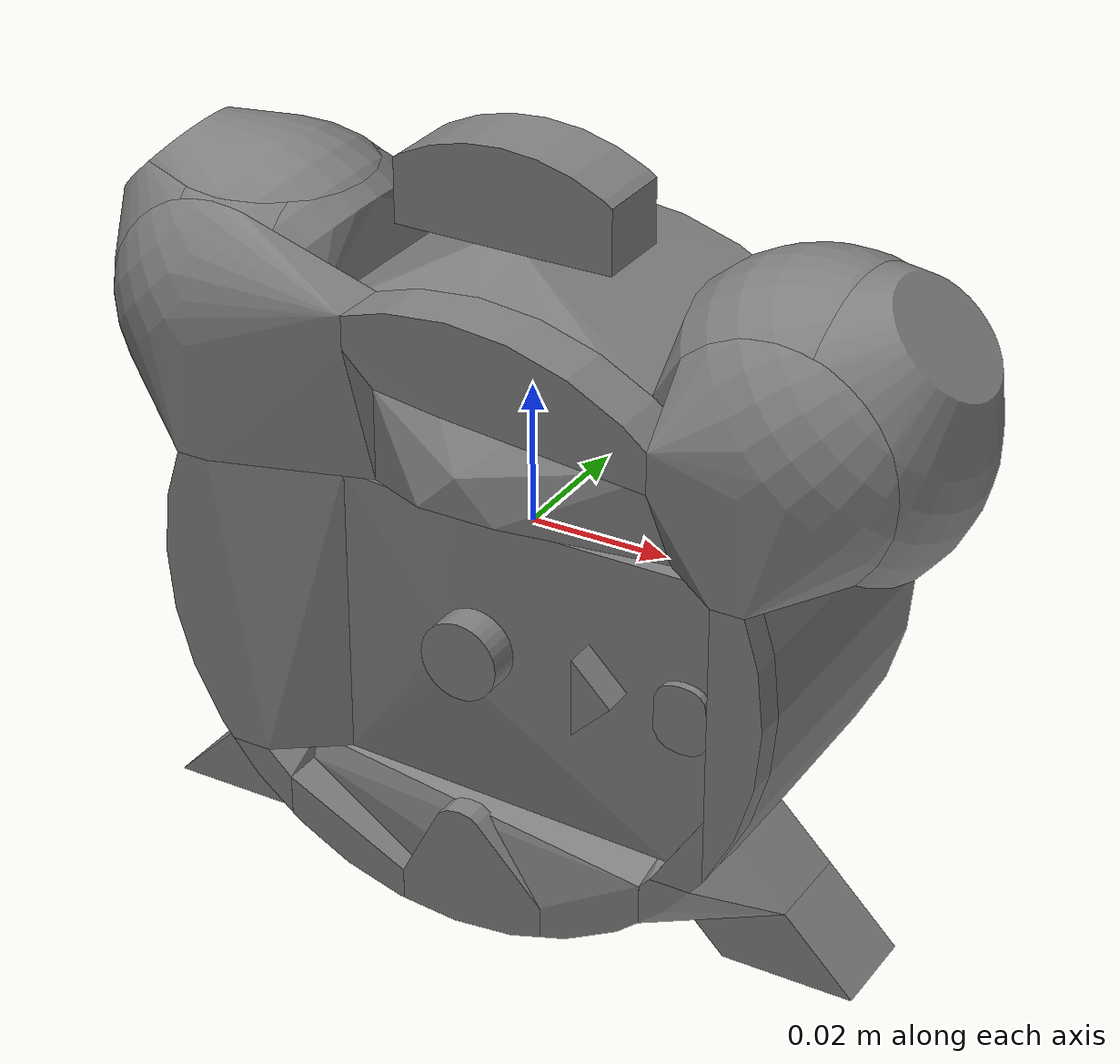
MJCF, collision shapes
<mujoco model="alarm_clock">
  <compiler meshdir="."/>

  <asset>
    <mesh name="alarm_clock" file="alarm_clock.stl"/>
    <mesh name="alarm_clock_collision_hull_000" file="alarm_clock_collision_hull_000.stl"/>
    <mesh name="alarm_clock_collision_hull_001" file="alarm_clock_collision_hull_001.stl"/>
    <mesh name="alarm_clock_collision_hull_002" file="alarm_clock_collision_hull_002.stl"/>
    <mesh name="alarm_clock_collision_hull_003" file="alarm_clock_collision_hull_003.stl"/>
    <mesh name="alarm_clock_collision_hull_004" file="alarm_clock_collision_hull_004.stl"/>
    <mesh name="alarm_clock_collision_hull_005" file="alarm_clock_collision_hull_005.stl"/>
    <mesh name="alarm_clock_collision_hull_006" file="alarm_clock_collision_hull_006.stl"/>
    <mesh name="alarm_clock_collision_hull_007" file="alarm_clock_collision_hull_007.stl"/>
    <mesh name="alarm_clock_collision_hull_008" file="alarm_clock_collision_hull_008.stl"/>
    <mesh name="alarm_clock_collision_hull_009" file="alarm_clock_collision_hull_009.stl"/>
    <mesh name="alarm_clock_collision_hull_010" file="alarm_clock_collision_hull_010.stl"/>
    <mesh name="alarm_clock_collision_hull_011" file="alarm_clock_collision_hull_011.stl"/>
    <mesh name="alarm_clock_collision_hull_012" file="alarm_clock_collision_hull_012.stl"/>
    <mesh name="alarm_clock_collision_hull_013" file="alarm_clock_collision_hull_013.stl"/>
    <mesh name="alarm_clock_collision_hull_014" file="alarm_clock_collision_hull_014.stl"/>
    <mesh name="alarm_clock_collision_hull_015" file="alarm_clock_collision_hull_015.stl"/>
    <mesh name="alarm_clock_collision_hull_016" file="alarm_clock_collision_hull_016.stl"/>
    <mesh name="alarm_clock_collision_hull_017" file="alarm_clock_collision_hull_017.stl"/>
    <mesh name="alarm_clock_collision_hull_018" file="alarm_clock_collision_hull_018.stl"/>
    <mesh name="alarm_clock_collision_hull_019" file="alarm_clock_collision_hull_019.stl"/>
    <mesh name="alarm_clock_collision_hull_020" file="alarm_clock_collision_hull_020.stl"/>
    <mesh name="alarm_clock_collision_hull_021" file="alarm_clock_collision_hull_021.stl"/>
    <mesh name="alarm_clock_collision_hull_022" file="alarm_clock_collision_hull_022.stl"/>
    <mesh name="alarm_clock_collision_hull_023" file="alarm_clock_collision_hull_023.stl"/>
    <mesh name="alarm_clock_collision_hull_024" file="alarm_clock_collision_hull_024.stl"/>
    <mesh name="alarm_clock_collision_hull_025" file="alarm_clock_collision_hull_025.stl"/>
    <mesh name="alarm_clock_collision_hull_026" file="alarm_clock_collision_hull_026.stl"/>
    <mesh name="alarm_clock_collision_hull_027" file="alarm_clock_collision_hull_027.stl"/>
  </asset>

  <worldbody>
    <body name="object">
      <freejoint name="object_joint"/>
      <geom name="object_visual" type="mesh" mesh="alarm_clock"
            contype="0" conaffinity="0" group="2" rgba="0.9 0.9 0.8 1" mass="0"/>
      <geom name="alarm_clock_collision_hull_000_collision" type="mesh" mesh="alarm_clock_collision_hull_000"
            mass="0.0018" condim="6" friction="1.0 0.002 0.002" priority="1"/>
      <geom name="alarm_clock_collision_hull_001_collision" type="mesh" mesh="alarm_clock_collision_hull_001"
            mass="0.0018" condim="6" friction="1.0 0.002 0.002" priority="1"/>
      <geom name="alarm_clock_collision_hull_002_collision" type="mesh" mesh="alarm_clock_collision_hull_002"
            mass="0.0018" condim="6" friction="1.0 0.002 0.002" priority="1"/>
      <geom name="alarm_clock_collision_hull_003_collision" type="mesh" mesh="alarm_clock_collision_hull_003"
            mass="0.0018" condim="6" friction="1.0 0.002 0.002" priority="1"/>
      <geom name="alarm_clock_collision_hull_004_collision" type="mesh" mesh="alarm_clock_collision_hull_004"
            mass="0.0018" condim="6" friction="1.0 0.002 0.002" priority="1"/>
      <geom name="alarm_clock_collision_hull_005_collision" type="mesh" mesh="alarm_clock_collision_hull_005"
            mass="0.0018" condim="6" friction="1.0 0.002 0.002" priority="1"/>
      <geom name="alarm_clock_collision_hull_006_collision" type="mesh" mesh="alarm_clock_collision_hull_006"
            mass="0.0018" condim="6" friction="1.0 0.002 0.002" priority="1"/>
      <geom name="alarm_clock_collision_hull_007_collision" type="mesh" mesh="alarm_clock_collision_hull_007"
            mass="0.0018" condim="6" friction="1.0 0.002 0.002" priority="1"/>
      <geom name="alarm_clock_collision_hull_008_collision" type="mesh" mesh="alarm_clock_collision_hull_008"
            mass="0.0018" condim="6" friction="1.0 0.002 0.002" priority="1"/>
      <geom name="alarm_clock_collision_hull_009_collision" type="mesh" mesh="alarm_clock_collision_hull_009"
            mass="0.0018" condim="6" friction="1.0 0.002 0.002" priority="1"/>
      <geom name="alarm_clock_collision_hull_010_collision" type="mesh" mesh="alarm_clock_collision_hull_010"
            mass="0.0018" condim="6" friction="1.0 0.002 0.002" priority="1"/>
      <geom name="alarm_clock_collision_hull_011_collision" type="mesh" mesh="alarm_clock_collision_hull_011"
            mass="0.0018" condim="6" friction="1.0 0.002 0.002" priority="1"/>
      <geom name="alarm_clock_collision_hull_012_collision" type="mesh" mesh="alarm_clock_collision_hull_012"
            mass="0.0018" condim="6" friction="1.0 0.002 0.002" priority="1"/>
      <geom name="alarm_clock_collision_hull_013_collision" type="mesh" mesh="alarm_clock_collision_hull_013"
            mass="0.0018" condim="6" friction="1.0 0.002 0.002" priority="1"/>
      <geom name="alarm_clock_collision_hull_014_collision" type="mesh" mesh="alarm_clock_collision_hull_014"
            mass="0.0018" condim="6" friction="1.0 0.002 0.002" priority="1"/>
      <geom name="alarm_clock_collision_hull_015_collision" type="mesh" mesh="alarm_clock_collision_hull_015"
            mass="0.0018" condim="6" friction="1.0 0.002 0.002" priority="1"/>
      <geom name="alarm_clock_collision_hull_016_collision" type="mesh" mesh="alarm_clock_collision_hull_016"
            mass="0.0018" condim="6" friction="1.0 0.002 0.002" priority="1"/>
      <geom name="alarm_clock_collision_hull_017_collision" type="mesh" mesh="alarm_clock_collision_hull_017"
            mass="0.0018" condim="6" friction="1.0 0.002 0.002" priority="1"/>
      <geom name="alarm_clock_collision_hull_018_collision" type="mesh" mesh="alarm_clock_collision_hull_018"
            mass="0.0018" condim="6" friction="1.0 0.002 0.002" priority="1"/>
      <geom name="alarm_clock_collision_hull_019_collision" type="mesh" mesh="alarm_clock_collision_hull_019"
            mass="0.0018" condim="6" friction="1.0 0.002 0.002" priority="1"/>
      <geom name="alarm_clock_collision_hull_020_collision" type="mesh" mesh="alarm_clock_collision_hull_020"
            mass="0.0018" condim="6" friction="1.0 0.002 0.002" priority="1"/>
      <geom name="alarm_clock_collision_hull_021_collision" type="mesh" mesh="alarm_clock_collision_hull_021"
            mass="0.0018" condim="6" friction="1.0 0.002 0.002" priority="1"/>
      <geom name="alarm_clock_collision_hull_022_collision" type="mesh" mesh="alarm_clock_collision_hull_022"
            mass="0.0018" condim="6" friction="1.0 0.002 0.002" priority="1"/>
      <geom name="alarm_clock_collision_hull_023_collision" type="mesh" mesh="alarm_clock_collision_hull_023"
            mass="0.0018" condim="6" friction="1.0 0.002 0.002" priority="1"/>
      <geom name="alarm_clock_collision_hull_024_collision" type="mesh" mesh="alarm_clock_collision_hull_024"
            mass="0.0018" condim="6" friction="1.0 0.002 0.002" priority="1"/>
      <geom name="alarm_clock_collision_hull_025_collision" type="mesh" mesh="alarm_clock_collision_hull_025"
            mass="0.0018" condim="6" friction="1.0 0.002 0.002" priority="1"/>
      <geom name="alarm_clock_collision_hull_026_collision" type="mesh" mesh="alarm_clock_collision_hull_026"
            mass="0.0018" condim="6" friction="1.0 0.002 0.002" priority="1"/>
      <geom name="alarm_clock_collision_hull_027_collision" type="mesh" mesh="alarm_clock_collision_hull_027"
            mass="0.0018" condim="6" friction="1.0 0.002 0.002" priority="1"/>
    </body>
  </worldbody>
</mujoco>
